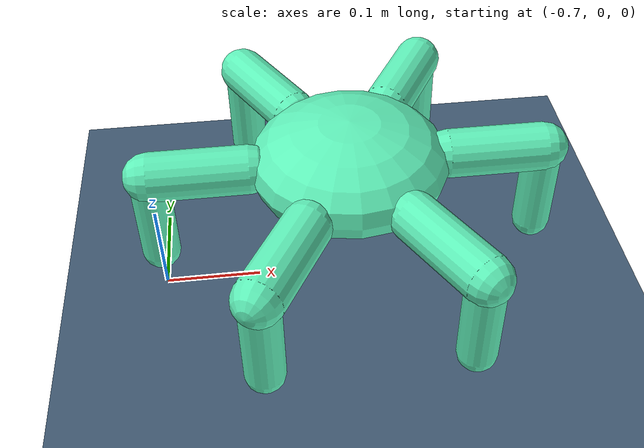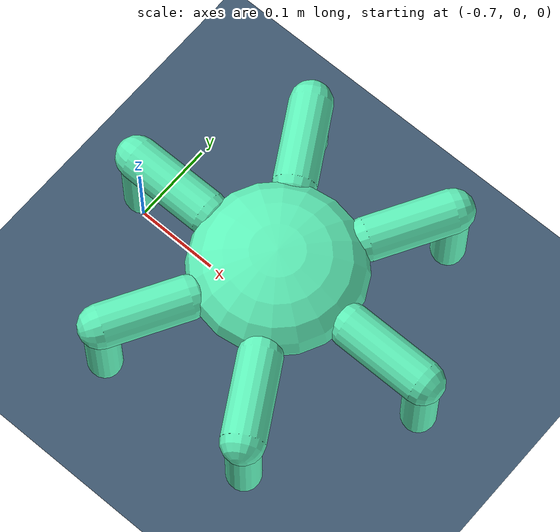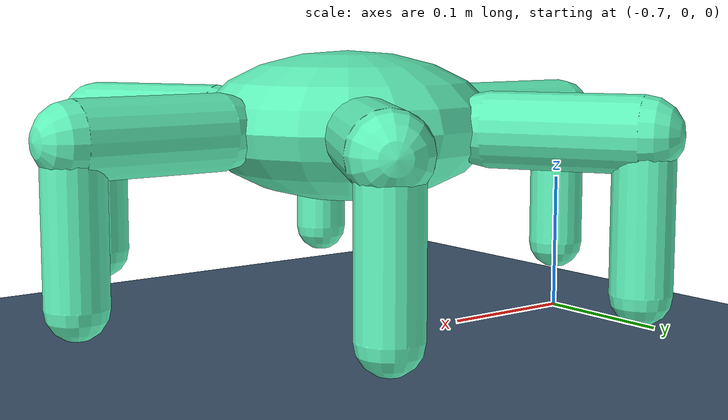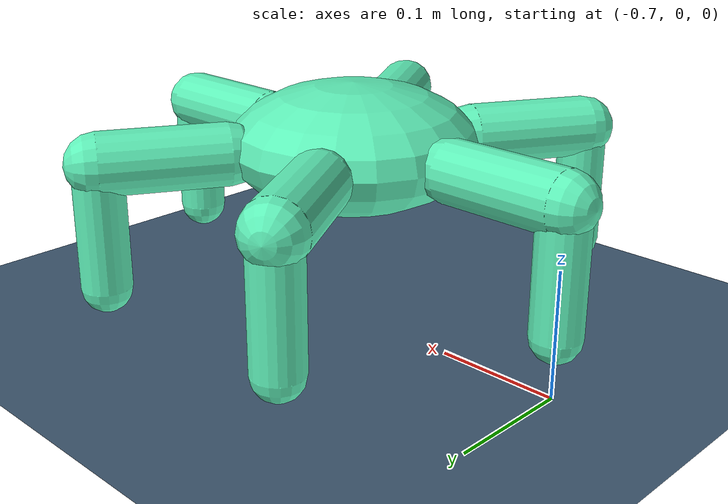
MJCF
<mujoco model="unnamed_model">
  <compiler angle="radian"/>
  <default>
    <default class="/"/>
    <default class="unnamed_model/"/>
    <default class="unnamed_model/unnamed_model/">
      <joint type="hinge" damping="2"/>
      <geom type="capsule" rgba="0.37454011884736249 0.95071430640991617 0.73199394181140509 1"/>
    </default>
    <default class="unnamed_model/unnamed_model_1/">
      <joint type="hinge" damping="2"/>
      <geom type="capsule" rgba="0.37454011884736249 0.95071430640991617 0.73199394181140509 1"/>
    </default>
    <default class="unnamed_model/unnamed_model_2/">
      <joint type="hinge" damping="2"/>
      <geom type="capsule" rgba="0.37454011884736249 0.95071430640991617 0.73199394181140509 1"/>
    </default>
    <default class="unnamed_model/unnamed_model_3/">
      <joint type="hinge" damping="2"/>
      <geom type="capsule" rgba="0.37454011884736249 0.95071430640991617 0.73199394181140509 1"/>
    </default>
    <default class="unnamed_model/unnamed_model_4/">
      <joint type="hinge" damping="2"/>
      <geom type="capsule" rgba="0.37454011884736249 0.95071430640991617 0.73199394181140509 1"/>
    </default>
    <default class="unnamed_model/unnamed_model_5/">
      <joint type="hinge" damping="2"/>
      <geom type="capsule" rgba="0.37454011884736249 0.95071430640991617 0.73199394181140509 1"/>
    </default>
  </default>
  <asset>
    <texture name="//unnamed_texture_0" type="2d" builtin="checker" rgb1="0.20000000000000001 0.29999999999999999 0.40000000000000002" rgb2="0.29999999999999999 0.40000000000000002 0.5" width="300" height="300"/>
    <material name="grid" class="/" texture="//unnamed_texture_0" texrepeat="5 5" reflectance="0.20000000000000001"/>
  </asset>
  <worldbody>
    <geom name="//unnamed_geom_0" class="/" type="plane" size="2 2 0.10000000000000001" material="grid"/>
    <light name="//unnamed_light_0" class="/" pos="-2 -1 3" dir="2 1 -2"/>
    <light name="//unnamed_light_1" class="/" pos="2 -1 3" dir="-2 1 -2"/>
    <site name="//unnamed_site_0" class="/" group="3" pos="-0.5 0 0.14999999999999999"/>
    <body pos="-0.5 0 0.14999999999999999" name="unnamed_model/">
      <freejoint name="unnamed_model/"/>
      <geom name="unnamed_model/torso" class="unnamed_model/" type="ellipsoid" size="0.10000000000000001 0.10000000000000001 0.050000000000000003" rgba="0.37454011884736249 0.95071430640991617 0.73199394181140509 1"/>
      <site name="unnamed_model//unnamed_site_0" class="unnamed_model/" pos="0.10000000000000001 0 0" euler="0 0 0"/>
      <body pos="0.10000000000000001 0 0" euler="0 0 0" name="unnamed_model/unnamed_model/">
        <body name="unnamed_model/unnamed_model//unnamed_body_0">
          <joint name="unnamed_model/unnamed_model//unnamed_joint_0" class="unnamed_model/unnamed_model/" axis="0 0 1"/>
          <geom name="unnamed_model/unnamed_model//unnamed_geom_0" class="unnamed_model/unnamed_model/" size="0.025000000000000001" fromto="0 0 0 0.10000000000000001 0 0"/>
          <body name="unnamed_model/unnamed_model//unnamed_body_1" pos="0.10000000000000001 0 0">
            <joint name="unnamed_model/unnamed_model//unnamed_joint_1" class="unnamed_model/unnamed_model/" axis="0 1 0"/>
            <geom name="unnamed_model/unnamed_model//unnamed_geom_1" class="unnamed_model/unnamed_model/" size="0.02" fromto="0 0 0 0 0 -0.10000000000000001"/>
          </body>
        </body>
      </body>
      <site name="unnamed_model//unnamed_site_1" class="unnamed_model/" pos="0.050000000000000017 0.086602540378443865 0" euler="0 0 1.0471975511965976"/>
      <body pos="0.050000000000000017 0.086602540378443865 0" euler="0 0 1.0471975511965976" name="unnamed_model/unnamed_model_1/">
        <body name="unnamed_model/unnamed_model_1//unnamed_body_0">
          <joint name="unnamed_model/unnamed_model_1//unnamed_joint_0" class="unnamed_model/unnamed_model_1/" axis="0 0 1"/>
          <geom name="unnamed_model/unnamed_model_1//unnamed_geom_0" class="unnamed_model/unnamed_model_1/" size="0.025000000000000001" fromto="0 0 0 0.10000000000000001 0 0"/>
          <body name="unnamed_model/unnamed_model_1//unnamed_body_1" pos="0.10000000000000001 0 0">
            <joint name="unnamed_model/unnamed_model_1//unnamed_joint_1" class="unnamed_model/unnamed_model_1/" axis="0 1 0"/>
            <geom name="unnamed_model/unnamed_model_1//unnamed_geom_1" class="unnamed_model/unnamed_model_1/" size="0.02" fromto="0 0 0 0 0 -0.10000000000000001"/>
          </body>
        </body>
      </body>
      <site name="unnamed_model//unnamed_site_2" class="unnamed_model/" pos="-0.049999999999999982 0.086602540378443879 0" euler="0 0 2.0943951023931953"/>
      <body pos="-0.049999999999999982 0.086602540378443879 0" euler="0 0 2.0943951023931953" name="unnamed_model/unnamed_model_2/">
        <body name="unnamed_model/unnamed_model_2//unnamed_body_0">
          <joint name="unnamed_model/unnamed_model_2//unnamed_joint_0" class="unnamed_model/unnamed_model_2/" axis="0 0 1"/>
          <geom name="unnamed_model/unnamed_model_2//unnamed_geom_0" class="unnamed_model/unnamed_model_2/" size="0.025000000000000001" fromto="0 0 0 0.10000000000000001 0 0"/>
          <body name="unnamed_model/unnamed_model_2//unnamed_body_1" pos="0.10000000000000001 0 0">
            <joint name="unnamed_model/unnamed_model_2//unnamed_joint_1" class="unnamed_model/unnamed_model_2/" axis="0 1 0"/>
            <geom name="unnamed_model/unnamed_model_2//unnamed_geom_1" class="unnamed_model/unnamed_model_2/" size="0.02" fromto="0 0 0 0 0 -0.10000000000000001"/>
          </body>
        </body>
      </body>
      <site name="unnamed_model//unnamed_site_3" class="unnamed_model/" pos="-0.10000000000000001 1.2246467991473533e-17 0" euler="0 0 3.1415926535897931"/>
      <body pos="-0.10000000000000001 1.2246467991473533e-17 0" euler="0 0 3.1415926535897931" name="unnamed_model/unnamed_model_3/">
        <body name="unnamed_model/unnamed_model_3//unnamed_body_0">
          <joint name="unnamed_model/unnamed_model_3//unnamed_joint_0" class="unnamed_model/unnamed_model_3/" axis="0 0 1"/>
          <geom name="unnamed_model/unnamed_model_3//unnamed_geom_0" class="unnamed_model/unnamed_model_3/" size="0.025000000000000001" fromto="0 0 0 0.10000000000000001 0 0"/>
          <body name="unnamed_model/unnamed_model_3//unnamed_body_1" pos="0.10000000000000001 0 0">
            <joint name="unnamed_model/unnamed_model_3//unnamed_joint_1" class="unnamed_model/unnamed_model_3/" axis="0 1 0"/>
            <geom name="unnamed_model/unnamed_model_3//unnamed_geom_1" class="unnamed_model/unnamed_model_3/" size="0.02" fromto="0 0 0 0 0 -0.10000000000000001"/>
          </body>
        </body>
      </body>
      <site name="unnamed_model//unnamed_site_4" class="unnamed_model/" pos="-0.050000000000000044 -0.086602540378443837 0" euler="0 0 4.1887902047863905"/>
      <body pos="-0.050000000000000044 -0.086602540378443837 0" euler="0 0 4.1887902047863905" name="unnamed_model/unnamed_model_4/">
        <body name="unnamed_model/unnamed_model_4//unnamed_body_0">
          <joint name="unnamed_model/unnamed_model_4//unnamed_joint_0" class="unnamed_model/unnamed_model_4/" axis="0 0 1"/>
          <geom name="unnamed_model/unnamed_model_4//unnamed_geom_0" class="unnamed_model/unnamed_model_4/" size="0.025000000000000001" fromto="0 0 0 0.10000000000000001 0 0"/>
          <body name="unnamed_model/unnamed_model_4//unnamed_body_1" pos="0.10000000000000001 0 0">
            <joint name="unnamed_model/unnamed_model_4//unnamed_joint_1" class="unnamed_model/unnamed_model_4/" axis="0 1 0"/>
            <geom name="unnamed_model/unnamed_model_4//unnamed_geom_1" class="unnamed_model/unnamed_model_4/" size="0.02" fromto="0 0 0 0 0 -0.10000000000000001"/>
          </body>
        </body>
      </body>
      <site name="unnamed_model//unnamed_site_5" class="unnamed_model/" pos="0.050000000000000017 -0.086602540378443865 0" euler="0 0 5.2359877559829888"/>
      <body pos="0.050000000000000017 -0.086602540378443865 0" euler="0 0 5.2359877559829888" name="unnamed_model/unnamed_model_5/">
        <body name="unnamed_model/unnamed_model_5//unnamed_body_0">
          <joint name="unnamed_model/unnamed_model_5//unnamed_joint_0" class="unnamed_model/unnamed_model_5/" axis="0 0 1"/>
          <geom name="unnamed_model/unnamed_model_5//unnamed_geom_0" class="unnamed_model/unnamed_model_5/" size="0.025000000000000001" fromto="0 0 0 0.10000000000000001 0 0"/>
          <body name="unnamed_model/unnamed_model_5//unnamed_body_1" pos="0.10000000000000001 0 0">
            <joint name="unnamed_model/unnamed_model_5//unnamed_joint_1" class="unnamed_model/unnamed_model_5/" axis="0 1 0"/>
            <geom name="unnamed_model/unnamed_model_5//unnamed_geom_1" class="unnamed_model/unnamed_model_5/" size="0.02" fromto="0 0 0 0 0 -0.10000000000000001"/>
          </body>
        </body>
      </body>
    </body>
  </worldbody>
  <actuator>
    <position name="unnamed_model/unnamed_model//unnamed_actuator_0" class="unnamed_model/unnamed_model/" joint="unnamed_model/unnamed_model//unnamed_joint_0" kp="10"/>
    <position name="unnamed_model/unnamed_model//unnamed_actuator_1" class="unnamed_model/unnamed_model/" joint="unnamed_model/unnamed_model//unnamed_joint_1" kp="10"/>
    <position name="unnamed_model/unnamed_model_1//unnamed_actuator_0" class="unnamed_model/unnamed_model_1/" joint="unnamed_model/unnamed_model_1//unnamed_joint_0" kp="10"/>
    <position name="unnamed_model/unnamed_model_1//unnamed_actuator_1" class="unnamed_model/unnamed_model_1/" joint="unnamed_model/unnamed_model_1//unnamed_joint_1" kp="10"/>
    <position name="unnamed_model/unnamed_model_2//unnamed_actuator_0" class="unnamed_model/unnamed_model_2/" joint="unnamed_model/unnamed_model_2//unnamed_joint_0" kp="10"/>
    <position name="unnamed_model/unnamed_model_2//unnamed_actuator_1" class="unnamed_model/unnamed_model_2/" joint="unnamed_model/unnamed_model_2//unnamed_joint_1" kp="10"/>
    <position name="unnamed_model/unnamed_model_3//unnamed_actuator_0" class="unnamed_model/unnamed_model_3/" joint="unnamed_model/unnamed_model_3//unnamed_joint_0" kp="10"/>
    <position name="unnamed_model/unnamed_model_3//unnamed_actuator_1" class="unnamed_model/unnamed_model_3/" joint="unnamed_model/unnamed_model_3//unnamed_joint_1" kp="10"/>
    <position name="unnamed_model/unnamed_model_4//unnamed_actuator_0" class="unnamed_model/unnamed_model_4/" joint="unnamed_model/unnamed_model_4//unnamed_joint_0" kp="10"/>
    <position name="unnamed_model/unnamed_model_4//unnamed_actuator_1" class="unnamed_model/unnamed_model_4/" joint="unnamed_model/unnamed_model_4//unnamed_joint_1" kp="10"/>
    <position name="unnamed_model/unnamed_model_5//unnamed_actuator_0" class="unnamed_model/unnamed_model_5/" joint="unnamed_model/unnamed_model_5//unnamed_joint_0" kp="10"/>
    <position name="unnamed_model/unnamed_model_5//unnamed_actuator_1" class="unnamed_model/unnamed_model_5/" joint="unnamed_model/unnamed_model_5//unnamed_joint_1" kp="10"/>
  </actuator>
</mujoco>
